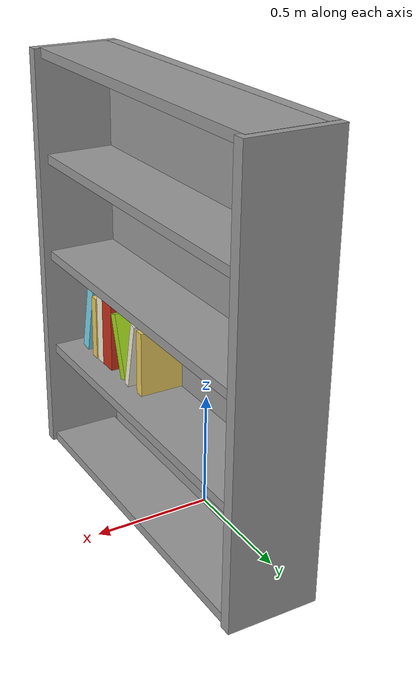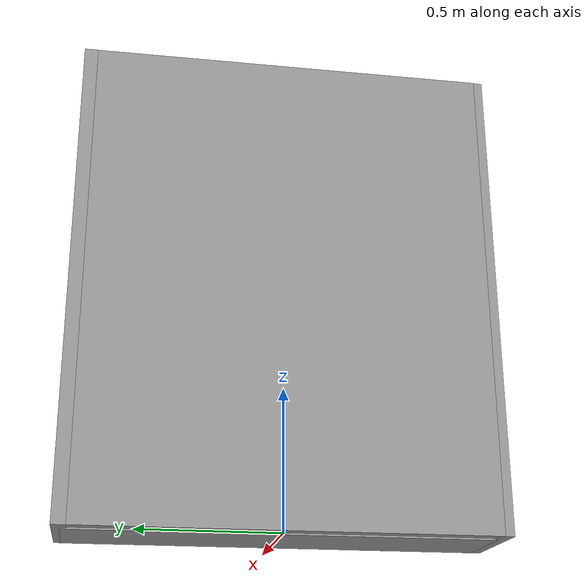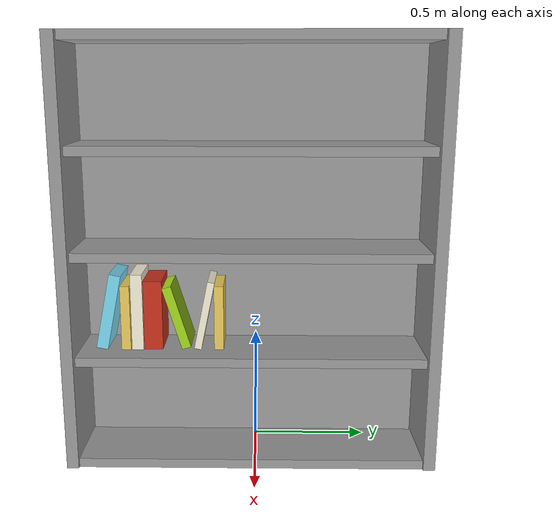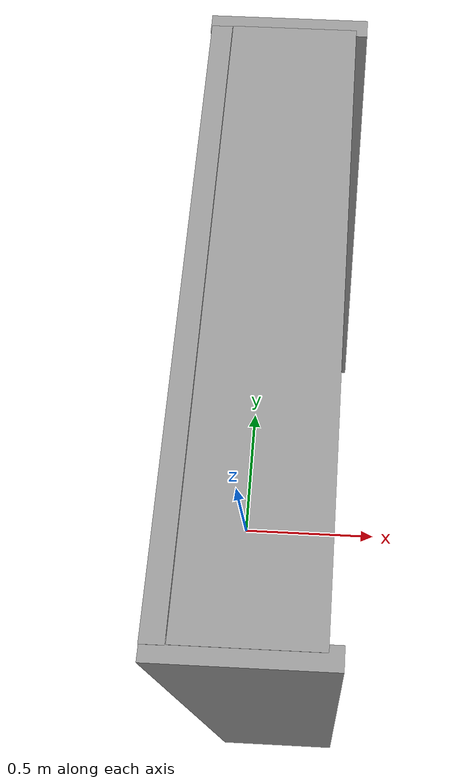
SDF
<?xml version='1.0'?>
<sdf version='1.7'>
  <model name='my_bookshelf'>
    <link name='link'>
      <inertial>
        <mass>1</mass>
        <inertia>
          <ixx>0.166667</ixx>
          <ixy>0</ixy>
          <ixz>0</ixz>
          <iyy>0.166667</iyy>
          <iyz>0</iyz>
          <izz>0.166667</izz>
        </inertia>
        <pose>0 0 0 0 -0 0</pose>
      </inertial>
      <self_collide>0</self_collide>
      <enable_wind>0</enable_wind>
      <kinematic>0</kinematic>
      <pose>0.010503 -0.018536 0.006993 0 -0 0</pose>
      <gravity>1</gravity>
      <visual name='visual'>
        <geometry>
          <box>
            <size>0.05 1.5 1.8</size>
          </box>
        </geometry>
        <material>
          <script>
            <name>Gazebo/Grey</name>
            <uri>file://media/materials/scripts/gazebo.material</uri>
          </script>
          <shader type='pixel'>
            <normal_map>__default__</normal_map>
          </shader>
          <ambient>0.9 0.9 0.9 1</ambient>
          <diffuse>0.9 0.9 0.9 1</diffuse>
          <specular>0.01 0.01 0.01 1</specular>
          <emissive>0 0 0 1</emissive>
        </material>
        <pose>0 0 0.9 0 -0 0</pose>
        <transparency>0</transparency>
        <cast_shadows>1</cast_shadows>
      </visual>
      <collision name='collision'>
        <laser_retro>0</laser_retro>
        <max_contacts>10</max_contacts>
        <pose>0 0 0.9 0 -0 0</pose>
        <geometry>
          <box>
            <size>0.05 1.5 1.8</size>
          </box>
        </geometry>
        <surface>
          <friction>
            <ode>
              <mu>1</mu>
              <mu2>1</mu2>
              <fdir1>0 0 0</fdir1>
              <slip1>0</slip1>
              <slip2>0</slip2>
            </ode>
            <torsional>
              <coefficient>1</coefficient>
              <patch_radius>0</patch_radius>
              <surface_radius>0</surface_radius>
              <use_patch_radius>1</use_patch_radius>
              <ode>
                <slip>0</slip>
              </ode>
            </torsional>
          </friction>
          <bounce>
            <restitution_coefficient>0</restitution_coefficient>
            <threshold>1e+06</threshold>
          </bounce>
          <contact>
            <collide_without_contact>0</collide_without_contact>
            <collide_without_contact_bitmask>1</collide_without_contact_bitmask>
            <collide_bitmask>1</collide_bitmask>
            <ode>
              <soft_cfm>0</soft_cfm>
              <soft_erp>0.2</soft_erp>
              <kp>1e+13</kp>
              <kd>1</kd>
              <max_vel>0.01</max_vel>
              <min_depth>0</min_depth>
            </ode>
            <bullet>
              <split_impulse>1</split_impulse>
              <split_impulse_penetration_threshold>-0.01</split_impulse_penetration_threshold>
              <soft_cfm>0</soft_cfm>
              <soft_erp>0.2</soft_erp>
              <kp>1e+13</kp>
              <kd>1</kd>
            </bullet>
          </contact>
        </surface>
      </collision>
    </link>
    <link name='link_0'>
      <inertial>
        <mass>1</mass>
        <inertia>
          <ixx>0.166667</ixx>
          <ixy>0</ixy>
          <ixz>0</ixz>
          <iyy>0.166667</iyy>
          <iyz>0</iyz>
          <izz>0.166667</izz>
        </inertia>
        <pose>0 0 0 0 -0 0</pose>
      </inertial>
      <pose>0.126439 -0.625111 0.659532 0 -0 0</pose>
      <gravity>0</gravity>
      <self_collide>0</self_collide>
      <kinematic>0</kinematic>
      <enable_wind>0</enable_wind>
      <visual name='visual'>
        <pose>0 0 0 -0.2 0 0</pose>
        <geometry>
          <box>
            <size>0.2 0.05 0.33</size>
          </box>
        </geometry>
        <material>
          <lighting>1</lighting>
          <script>
            <uri>file://media/materials/scripts/gazebo.material</uri>
            <name>Gazebo/Grey</name>
          </script>
          <shader type='pixel'>
            <normal_map>__default__</normal_map>
          </shader>
          <ambient>0.47 0.84 0.93 1</ambient>
          <diffuse>0.47 0.84 0.93 1</diffuse>
          <specular>0.01 0.01 0.01 1</specular>
          <emissive>0 0 0 1</emissive>
        </material>
        <transparency>0</transparency>
        <cast_shadows>1</cast_shadows>
      </visual>
      <collision name='collision'>
        <laser_retro>0</laser_retro>
        <max_contacts>10</max_contacts>
        <pose>0 0 0 -0.2 0 0</pose>
        <geometry>
          <box>
            <size>0.2 0.05 0.33</size>
          </box>
        </geometry>
        <surface>
          <friction>
            <ode>
              <mu>1</mu>
              <mu2>1</mu2>
              <fdir1>0 0 0</fdir1>
              <slip1>0</slip1>
              <slip2>0</slip2>
            </ode>
            <torsional>
              <coefficient>1</coefficient>
              <patch_radius>0</patch_radius>
              <surface_radius>0</surface_radius>
              <use_patch_radius>1</use_patch_radius>
              <ode>
                <slip>0</slip>
              </ode>
            </torsional>
          </friction>
          <bounce>
            <restitution_coefficient>0</restitution_coefficient>
            <threshold>1e+06</threshold>
          </bounce>
          <contact>
            <collide_without_contact>0</collide_without_contact>
            <collide_without_contact_bitmask>1</collide_without_contact_bitmask>
            <collide_bitmask>1</collide_bitmask>
            <ode>
              <soft_cfm>0</soft_cfm>
              <soft_erp>0.2</soft_erp>
              <kp>1e+13</kp>
              <kd>1</kd>
              <max_vel>0.01</max_vel>
              <min_depth>0</min_depth>
            </ode>
            <bullet>
              <split_impulse>1</split_impulse>
              <split_impulse_penetration_threshold>-0.01</split_impulse_penetration_threshold>
              <soft_cfm>0</soft_cfm>
              <soft_erp>0.2</soft_erp>
              <kp>1e+13</kp>
              <kd>1</kd>
            </bullet>
          </contact>
        </surface>
      </collision>
    </link>
    <link name='link_0_clone'>
      <inertial>
        <mass>1</mass>
        <inertia>
          <ixx>0.166667</ixx>
          <ixy>0</ixy>
          <ixz>0</ixz>
          <iyy>0.166667</iyy>
          <iyz>0</iyz>
          <izz>0.166667</izz>
        </inertia>
        <pose>0 0 0 0 -0 0</pose>
      </inertial>
      <pose>0.132674 -0.552591 0.635683 0 -0 0</pose>
      <gravity>1</gravity>
      <self_collide>0</self_collide>
      <kinematic>0</kinematic>
      <enable_wind>0</enable_wind>
      <visual name='visual'>
        <pose>0 0 0 0 -0 0</pose>
        <geometry>
          <box>
            <size>0.2 0.04 0.28</size>
          </box>
        </geometry>
        <material>
          <lighting>1</lighting>
          <script>
            <uri>file://media/materials/scripts/gazebo.material</uri>
            <name>Gazebo/Grey</name>
          </script>
          <shader type='pixel'>
            <normal_map>__default__</normal_map>
          </shader>
          <ambient>0.91 0.79 0.36 1</ambient>
          <diffuse>0.91 0.79 0.36 1</diffuse>
          <specular>0.01 0.01 0.01 1</specular>
          <emissive>0 0 0 1</emissive>
        </material>
        <transparency>0</transparency>
        <cast_shadows>1</cast_shadows>
      </visual>
      <collision name='collision'>
        <laser_retro>0</laser_retro>
        <max_contacts>10</max_contacts>
        <pose>0 0 0 0 -0 0</pose>
        <geometry>
          <box>
            <size>0.2 0.04 0.28</size>
          </box>
        </geometry>
        <surface>
          <friction>
            <ode>
              <mu>1</mu>
              <mu2>1</mu2>
              <fdir1>0 0 0</fdir1>
              <slip1>0</slip1>
              <slip2>0</slip2>
            </ode>
            <torsional>
              <coefficient>1</coefficient>
              <patch_radius>0</patch_radius>
              <surface_radius>0</surface_radius>
              <use_patch_radius>1</use_patch_radius>
              <ode>
                <slip>0</slip>
              </ode>
            </torsional>
          </friction>
          <bounce>
            <restitution_coefficient>0</restitution_coefficient>
            <threshold>1e+06</threshold>
          </bounce>
          <contact>
            <collide_without_contact>0</collide_without_contact>
            <collide_without_contact_bitmask>1</collide_without_contact_bitmask>
            <collide_bitmask>1</collide_bitmask>
            <ode>
              <soft_cfm>0</soft_cfm>
              <soft_erp>0.2</soft_erp>
              <kp>1e+13</kp>
              <kd>1</kd>
              <max_vel>0.01</max_vel>
              <min_depth>0</min_depth>
            </ode>
            <bullet>
              <split_impulse>1</split_impulse>
              <split_impulse_penetration_threshold>-0.01</split_impulse_penetration_threshold>
              <soft_cfm>0</soft_cfm>
              <soft_erp>0.2</soft_erp>
              <kp>1e+13</kp>
              <kd>1</kd>
            </bullet>
          </contact>
        </surface>
      </collision>
    </link>
    <link name='link_0_clone_0'>
      <inertial>
        <mass>1</mass>
        <inertia>
          <ixx>0.166667</ixx>
          <ixy>0</ixy>
          <ixz>0</ixz>
          <iyy>0.166667</iyy>
          <iyz>0</iyz>
          <izz>0.166667</izz>
        </inertia>
        <pose>0 0 0 0 -0 0</pose>
      </inertial>
      <pose>0.128809 -0.503591 0.659532 0 -0 0</pose>
      <gravity>1</gravity>
      <self_collide>0</self_collide>
      <kinematic>0</kinematic>
      <enable_wind>0</enable_wind>
      <visual name='visual'>
        <pose>0 0 0 0 -0 0</pose>
        <geometry>
          <box>
            <size>0.2 0.05 0.33</size>
          </box>
        </geometry>
        <material>
          <lighting>1</lighting>
          <script>
            <uri>file://media/materials/scripts/gazebo.material</uri>
            <name>Gazebo/Grey</name>
          </script>
          <shader type='pixel'>
            <normal_map>__default__</normal_map>
          </shader>
          <ambient>0.96 0.93 0.84 1</ambient>
          <diffuse>0.96 0.93 0.84 1</diffuse>
          <specular>0.01 0.01 0.01 1</specular>
          <emissive>0 0 0 1</emissive>
        </material>
        <transparency>0</transparency>
        <cast_shadows>1</cast_shadows>
      </visual>
      <collision name='collision'>
        <laser_retro>0</laser_retro>
        <max_contacts>10</max_contacts>
        <pose>0 0 0 0 -0 0</pose>
        <geometry>
          <box>
            <size>0.2 0.05 0.33</size>
          </box>
        </geometry>
        <surface>
          <friction>
            <ode>
              <mu>1</mu>
              <mu2>1</mu2>
              <fdir1>0 0 0</fdir1>
              <slip1>0</slip1>
              <slip2>0</slip2>
            </ode>
            <torsional>
              <coefficient>1</coefficient>
              <patch_radius>0</patch_radius>
              <surface_radius>0</surface_radius>
              <use_patch_radius>1</use_patch_radius>
              <ode>
                <slip>0</slip>
              </ode>
            </torsional>
          </friction>
          <bounce>
            <restitution_coefficient>0</restitution_coefficient>
            <threshold>1e+06</threshold>
          </bounce>
          <contact>
            <collide_without_contact>0</collide_without_contact>
            <collide_without_contact_bitmask>1</collide_without_contact_bitmask>
            <collide_bitmask>1</collide_bitmask>
            <ode>
              <soft_cfm>0</soft_cfm>
              <soft_erp>0.2</soft_erp>
              <kp>1e+13</kp>
              <kd>1</kd>
              <max_vel>0.01</max_vel>
              <min_depth>0</min_depth>
            </ode>
            <bullet>
              <split_impulse>1</split_impulse>
              <split_impulse_penetration_threshold>-0.01</split_impulse_penetration_threshold>
              <soft_cfm>0</soft_cfm>
              <soft_erp>0.2</soft_erp>
              <kp>1e+13</kp>
              <kd>1</kd>
            </bullet>
          </contact>
        </surface>
      </collision>
    </link>
    <link name='link_0_clone_0_clone'>
      <inertial>
        <mass>1</mass>
        <inertia>
          <ixx>0.166667</ixx>
          <ixy>0</ixy>
          <ixz>0</ixz>
          <iyy>0.166667</iyy>
          <iyz>0</iyz>
          <izz>0.166667</izz>
        </inertia>
        <pose>0 0 0 0 -0 0</pose>
      </inertial>
      <pose>0.130424 -0.435023 0.647115 0 -0 0</pose>
      <gravity>1</gravity>
      <self_collide>0</self_collide>
      <kinematic>0</kinematic>
      <enable_wind>0</enable_wind>
      <visual name='visual'>
        <pose>0 0 0 0 -0 0</pose>
        <geometry>
          <box>
            <size>0.2 0.08 0.3</size>
          </box>
        </geometry>
        <material>
          <lighting>1</lighting>
          <script>
            <uri>file://media/materials/scripts/gazebo.material</uri>
            <name>Gazebo/Grey</name>
          </script>
          <shader type='pixel'>
            <normal_map>__default__</normal_map>
          </shader>
          <ambient>0.78 0.19 0.11 1</ambient>
          <diffuse>0.78 0.19 0.11 1</diffuse>
          <specular>0.01 0.01 0.01 1</specular>
          <emissive>0 0 0 1</emissive>
        </material>
        <transparency>0</transparency>
        <cast_shadows>1</cast_shadows>
      </visual>
      <collision name='collision'>
        <laser_retro>0</laser_retro>
        <max_contacts>10</max_contacts>
        <pose>0 0 0 0 -0 0</pose>
        <geometry>
          <box>
            <size>0.2 0.08 0.3</size>
          </box>
        </geometry>
        <surface>
          <friction>
            <ode>
              <mu>1</mu>
              <mu2>1</mu2>
              <fdir1>0 0 0</fdir1>
              <slip1>0</slip1>
              <slip2>0</slip2>
            </ode>
            <torsional>
              <coefficient>1</coefficient>
              <patch_radius>0</patch_radius>
              <surface_radius>0</surface_radius>
              <use_patch_radius>1</use_patch_radius>
              <ode>
                <slip>0</slip>
              </ode>
            </torsional>
          </friction>
          <bounce>
            <restitution_coefficient>0</restitution_coefficient>
            <threshold>1e+06</threshold>
          </bounce>
          <contact>
            <collide_without_contact>0</collide_without_contact>
            <collide_without_contact_bitmask>1</collide_without_contact_bitmask>
            <collide_bitmask>1</collide_bitmask>
            <ode>
              <soft_cfm>0</soft_cfm>
              <soft_erp>0.2</soft_erp>
              <kp>1e+13</kp>
              <kd>1</kd>
              <max_vel>0.01</max_vel>
              <min_depth>0</min_depth>
            </ode>
            <bullet>
              <split_impulse>1</split_impulse>
              <split_impulse_penetration_threshold>-0.01</split_impulse_penetration_threshold>
              <soft_cfm>0</soft_cfm>
              <soft_erp>0.2</soft_erp>
              <kp>1e+13</kp>
              <kd>1</kd>
            </bullet>
          </contact>
        </surface>
      </collision>
    </link>
    <link name='link_0_clone_0_clone_0'>
      <inertial>
        <mass>1</mass>
        <inertia>
          <ixx>0.166667</ixx>
          <ixy>0</ixy>
          <ixz>0</ixz>
          <iyy>0.166667</iyy>
          <iyz>0</iyz>
          <izz>0.166667</izz>
        </inertia>
        <pose>0 0 0 0 -0 0</pose>
      </inertial>
      <pose>0.13743 -0.21618 0.64809 0 -0 0</pose>
      <gravity>0</gravity>
      <self_collide>0</self_collide>
      <kinematic>0</kinematic>
      <enable_wind>0</enable_wind>
      <visual name='visual'>
        <pose>0 0 0 -0.2 0 0</pose>
        <geometry>
          <box>
            <size>0.2 0.03 0.3</size>
          </box>
        </geometry>
        <material>
          <lighting>1</lighting>
          <script>
            <uri>file://media/materials/scripts/gazebo.material</uri>
            <name>Gazebo/Grey</name>
          </script>
          <shader type='pixel'>
            <normal_map>__default__</normal_map>
          </shader>
          <ambient>0.96 0.93 0.84 1</ambient>
          <diffuse>0.96 0.93 0.84 1</diffuse>
          <specular>0.01 0.01 0.01 1</specular>
          <emissive>0 0 0 1</emissive>
        </material>
        <transparency>0</transparency>
        <cast_shadows>1</cast_shadows>
      </visual>
      <collision name='collision'>
        <laser_retro>0</laser_retro>
        <max_contacts>10</max_contacts>
        <pose>0 0 0 -0.2 0 0</pose>
        <geometry>
          <box>
            <size>0.2 0.03 0.3</size>
          </box>
        </geometry>
        <surface>
          <friction>
            <ode>
              <mu>1</mu>
              <mu2>1</mu2>
              <fdir1>0 0 0</fdir1>
              <slip1>0</slip1>
              <slip2>0</slip2>
            </ode>
            <torsional>
              <coefficient>1</coefficient>
              <patch_radius>0</patch_radius>
              <surface_radius>0</surface_radius>
              <use_patch_radius>1</use_patch_radius>
              <ode>
                <slip>0</slip>
              </ode>
            </torsional>
          </friction>
          <bounce>
            <restitution_coefficient>0</restitution_coefficient>
            <threshold>1e+06</threshold>
          </bounce>
          <contact>
            <collide_without_contact>0</collide_without_contact>
            <collide_without_contact_bitmask>1</collide_without_contact_bitmask>
            <collide_bitmask>1</collide_bitmask>
            <ode>
              <soft_cfm>0</soft_cfm>
              <soft_erp>0.2</soft_erp>
              <kp>1e+13</kp>
              <kd>1</kd>
              <max_vel>0.01</max_vel>
              <min_depth>0</min_depth>
            </ode>
            <bullet>
              <split_impulse>1</split_impulse>
              <split_impulse_penetration_threshold>-0.01</split_impulse_penetration_threshold>
              <soft_cfm>0</soft_cfm>
              <soft_erp>0.2</soft_erp>
              <kp>1e+13</kp>
              <kd>1</kd>
            </bullet>
          </contact>
        </surface>
      </collision>
    </link>
    <link name='link_0_clone_clone'>
      <inertial>
        <mass>1</mass>
        <inertia>
          <ixx>0.166667</ixx>
          <ixy>0</ixy>
          <ixz>0</ixz>
          <iyy>0.166667</iyy>
          <iyz>0</iyz>
          <izz>0.166667</izz>
        </inertia>
        <pose>0 0 0 0 -0 0</pose>
      </inertial>
      <pose>0.129091 -0.335574 0.635683 0 -0 0</pose>
      <gravity>1</gravity>
      <self_collide>0</self_collide>
      <kinematic>0</kinematic>
      <enable_wind>0</enable_wind>
      <visual name='visual'>
        <pose>0 0 0 0.3 -0 0</pose>
        <geometry>
          <box>
            <size>0.2 0.04 0.28</size>
          </box>
        </geometry>
        <material>
          <lighting>1</lighting>
          <script>
            <uri>file://media/materials/scripts/gazebo.material</uri>
            <name>Gazebo/Grey</name>
          </script>
          <shader type='pixel'>
            <normal_map>__default__</normal_map>
          </shader>
          <ambient>0.63 0.84 0.11 1</ambient>
          <diffuse>0.63 0.84 0.11 1</diffuse>
          <specular>0.01 0.01 0.01 1</specular>
          <emissive>0 0 0 1</emissive>
        </material>
        <transparency>0</transparency>
        <cast_shadows>1</cast_shadows>
      </visual>
      <collision name='collision'>
        <laser_retro>0</laser_retro>
        <max_contacts>10</max_contacts>
        <pose>0 0 0 0.3 -0 0</pose>
        <geometry>
          <box>
            <size>0.2 0.04 0.28</size>
          </box>
        </geometry>
        <surface>
          <friction>
            <ode>
              <mu>1</mu>
              <mu2>1</mu2>
              <fdir1>0 0 0</fdir1>
              <slip1>0</slip1>
              <slip2>0</slip2>
            </ode>
            <torsional>
              <coefficient>1</coefficient>
              <patch_radius>0</patch_radius>
              <surface_radius>0</surface_radius>
              <use_patch_radius>1</use_patch_radius>
              <ode>
                <slip>0</slip>
              </ode>
            </torsional>
          </friction>
          <bounce>
            <restitution_coefficient>0</restitution_coefficient>
            <threshold>1e+06</threshold>
          </bounce>
          <contact>
            <collide_without_contact>0</collide_without_contact>
            <collide_without_contact_bitmask>1</collide_without_contact_bitmask>
            <collide_bitmask>1</collide_bitmask>
            <ode>
              <soft_cfm>0</soft_cfm>
              <soft_erp>0.2</soft_erp>
              <kp>1e+13</kp>
              <kd>1</kd>
              <max_vel>0.01</max_vel>
              <min_depth>0</min_depth>
            </ode>
            <bullet>
              <split_impulse>1</split_impulse>
              <split_impulse_penetration_threshold>-0.01</split_impulse_penetration_threshold>
              <soft_cfm>0</soft_cfm>
              <soft_erp>0.2</soft_erp>
              <kp>1e+13</kp>
              <kd>1</kd>
            </bullet>
          </contact>
        </surface>
      </collision>
    </link>
    <link name='link_0_clone_clone_0'>
      <inertial>
        <mass>1</mass>
        <inertia>
          <ixx>0.166667</ixx>
          <ixy>0</ixy>
          <ixz>0</ixz>
          <iyy>0.166667</iyy>
          <iyz>0</iyz>
          <izz>0.166667</izz>
        </inertia>
        <pose>0 0 0 0 -0 0</pose>
      </inertial>
      <pose>0.125867 -0.155367 0.635683 0 -0 0</pose>
      <gravity>1</gravity>
      <self_collide>0</self_collide>
      <kinematic>0</kinematic>
      <enable_wind>0</enable_wind>
      <visual name='visual'>
        <pose>0 0 0 0 -0 0</pose>
        <geometry>
          <box>
            <size>0.2 0.04 0.28</size>
          </box>
        </geometry>
        <material>
          <lighting>1</lighting>
          <script>
            <uri>file://media/materials/scripts/gazebo.material</uri>
            <name>Gazebo/Grey</name>
          </script>
          <shader type='pixel'>
            <normal_map>__default__</normal_map>
          </shader>
          <ambient>0.91 0.79 0.36 1</ambient>
          <diffuse>0.91 0.79 0.36 1</diffuse>
          <specular>0.01 0.01 0.01 1</specular>
          <emissive>0 0 0 1</emissive>
        </material>
        <transparency>0</transparency>
        <cast_shadows>1</cast_shadows>
      </visual>
      <collision name='collision'>
        <laser_retro>0</laser_retro>
        <max_contacts>10</max_contacts>
        <pose>0 0 0 0 -0 0</pose>
        <geometry>
          <box>
            <size>0.2 0.04 0.28</size>
          </box>
        </geometry>
        <surface>
          <friction>
            <ode>
              <mu>1</mu>
              <mu2>1</mu2>
              <fdir1>0 0 0</fdir1>
              <slip1>0</slip1>
              <slip2>0</slip2>
            </ode>
            <torsional>
              <coefficient>1</coefficient>
              <patch_radius>0</patch_radius>
              <surface_radius>0</surface_radius>
              <use_patch_radius>1</use_patch_radius>
              <ode>
                <slip>0</slip>
              </ode>
            </torsional>
          </friction>
          <bounce>
            <restitution_coefficient>0</restitution_coefficient>
            <threshold>1e+06</threshold>
          </bounce>
          <contact>
            <collide_without_contact>0</collide_without_contact>
            <collide_without_contact_bitmask>1</collide_without_contact_bitmask>
            <collide_bitmask>1</collide_bitmask>
            <ode>
              <soft_cfm>0</soft_cfm>
              <soft_erp>0.2</soft_erp>
              <kp>1e+13</kp>
              <kd>1</kd>
              <max_vel>0.01</max_vel>
              <min_depth>0</min_depth>
            </ode>
            <bullet>
              <split_impulse>1</split_impulse>
              <split_impulse_penetration_threshold>-0.01</split_impulse_penetration_threshold>
              <soft_cfm>0</soft_cfm>
              <soft_erp>0.2</soft_erp>
              <kp>1e+13</kp>
              <kd>1</kd>
            </bullet>
          </contact>
        </surface>
      </collision>
    </link>
    <link name='link_clone'>
      <inertial>
        <mass>1</mass>
        <inertia>
          <ixx>0.166667</ixx>
          <ixy>0</ixy>
          <ixz>0</ixz>
          <iyy>0.166667</iyy>
          <iyz>0</iyz>
          <izz>0.166667</izz>
        </inertia>
        <pose>0 0 0 0 -0 0</pose>
      </inertial>
      <self_collide>0</self_collide>
      <enable_wind>0</enable_wind>
      <kinematic>0</kinematic>
      <pose>0.199559 -0.011174 -1.077 1.1e-05 -0.001065 2e-06</pose>
      <gravity>1</gravity>
      <visual name='visual'>
        <geometry>
          <box>
            <size>0.3 1.5 0.04</size>
          </box>
        </geometry>
        <material>
          <script>
            <name>Gazebo/Grey</name>
            <uri>file://media/materials/scripts/gazebo.material</uri>
          </script>
          <shader type='pixel'>
            <normal_map>__default__</normal_map>
          </shader>
          <ambient>0.9 0.9 0.9 1</ambient>
          <diffuse>0.9 0.9 0.9 1</diffuse>
          <specular>0.01 0.01 0.01 1</specular>
          <emissive>0 0 0 1</emissive>
        </material>
        <pose>0 0 1.1 0 -0 0</pose>
        <transparency>0</transparency>
        <cast_shadows>1</cast_shadows>
      </visual>
      <collision name='collision'>
        <laser_retro>0</laser_retro>
        <max_contacts>10</max_contacts>
        <pose>0 0 1.1 0 -0 0</pose>
        <geometry>
          <box>
            <size>0.3 1.5 0.04</size>
          </box>
        </geometry>
        <surface>
          <friction>
            <ode>
              <mu>1</mu>
              <mu2>1</mu2>
              <fdir1>0 0 0</fdir1>
              <slip1>0</slip1>
              <slip2>0</slip2>
            </ode>
            <torsional>
              <coefficient>1</coefficient>
              <patch_radius>0</patch_radius>
              <surface_radius>0</surface_radius>
              <use_patch_radius>1</use_patch_radius>
              <ode>
                <slip>0</slip>
              </ode>
            </torsional>
          </friction>
          <bounce>
            <restitution_coefficient>0</restitution_coefficient>
            <threshold>1e+06</threshold>
          </bounce>
          <contact>
            <collide_without_contact>0</collide_without_contact>
            <collide_without_contact_bitmask>1</collide_without_contact_bitmask>
            <collide_bitmask>1</collide_bitmask>
            <ode>
              <soft_cfm>0</soft_cfm>
              <soft_erp>0.2</soft_erp>
              <kp>1e+13</kp>
              <kd>1</kd>
              <max_vel>0.01</max_vel>
              <min_depth>0</min_depth>
            </ode>
            <bullet>
              <split_impulse>1</split_impulse>
              <split_impulse_penetration_threshold>-0.01</split_impulse_penetration_threshold>
              <soft_cfm>0</soft_cfm>
              <soft_erp>0.2</soft_erp>
              <kp>1e+13</kp>
              <kd>1</kd>
            </bullet>
          </contact>
        </surface>
      </collision>
    </link>
    <link name='link_clone_0'>
      <inertial>
        <mass>1</mass>
        <inertia>
          <ixx>0.166667</ixx>
          <ixy>0</ixy>
          <ixz>0</ixz>
          <iyy>0.166667</iyy>
          <iyz>0</iyz>
          <izz>0.166667</izz>
        </inertia>
        <pose>0 0 0 0 -0 0</pose>
      </inertial>
      <self_collide>0</self_collide>
      <enable_wind>0</enable_wind>
      <kinematic>0</kinematic>
      <pose>0.1762 -0.777121 0.006003 0 -0 0</pose>
      <gravity>1</gravity>
      <visual name='visual'>
        <geometry>
          <box>
            <size>0.05 0.38 1.8</size>
          </box>
        </geometry>
        <material>
          <script>
            <name>Gazebo/Grey</name>
            <uri>file://media/materials/scripts/gazebo.material</uri>
          </script>
          <shader type='pixel'>
            <normal_map>__default__</normal_map>
          </shader>
          <ambient>0.9 0.9 0.9 1</ambient>
          <diffuse>0.9 0.9 0.9 1</diffuse>
          <specular>0.01 0.01 0.01 1</specular>
          <emissive>0 0 0 1</emissive>
        </material>
        <pose>0 0 0.9 0 -0 1.5707</pose>
        <transparency>0</transparency>
        <cast_shadows>1</cast_shadows>
      </visual>
      <collision name='collision'>
        <laser_retro>0</laser_retro>
        <max_contacts>10</max_contacts>
        <pose>0 0 0.9 0 -0 1.5707</pose>
        <geometry>
          <box>
            <size>0.05 0.38 1.8</size>
          </box>
        </geometry>
        <surface>
          <friction>
            <ode>
              <mu>1</mu>
              <mu2>1</mu2>
              <fdir1>0 0 0</fdir1>
              <slip1>0</slip1>
              <slip2>0</slip2>
            </ode>
            <torsional>
              <coefficient>1</coefficient>
              <patch_radius>0</patch_radius>
              <surface_radius>0</surface_radius>
              <use_patch_radius>1</use_patch_radius>
              <ode>
                <slip>0</slip>
              </ode>
            </torsional>
          </friction>
          <bounce>
            <restitution_coefficient>0</restitution_coefficient>
            <threshold>1e+06</threshold>
          </bounce>
          <contact>
            <collide_without_contact>0</collide_without_contact>
            <collide_without_contact_bitmask>1</collide_without_contact_bitmask>
            <collide_bitmask>1</collide_bitmask>
            <ode>
              <soft_cfm>0</soft_cfm>
              <soft_erp>0.2</soft_erp>
              <kp>1e+13</kp>
              <kd>1</kd>
              <max_vel>0.01</max_vel>
              <min_depth>0</min_depth>
            </ode>
            <bullet>
              <split_impulse>1</split_impulse>
              <split_impulse_penetration_threshold>-0.01</split_impulse_penetration_threshold>
              <soft_cfm>0</soft_cfm>
              <soft_erp>0.2</soft_erp>
              <kp>1e+13</kp>
              <kd>1</kd>
            </bullet>
          </contact>
        </surface>
      </collision>
    </link>
    <link name='link_clone_0_clone'>
      <inertial>
        <mass>1</mass>
        <inertia>
          <ixx>0.166667</ixx>
          <ixy>0</ixy>
          <ixz>0</ixz>
          <iyy>0.166667</iyy>
          <iyz>0</iyz>
          <izz>0.166667</izz>
        </inertia>
        <pose>0 0 0 0 -0 0</pose>
      </inertial>
      <self_collide>0</self_collide>
      <enable_wind>0</enable_wind>
      <kinematic>0</kinematic>
      <pose>0.173251 0.740189 0.006003 0 -0 0</pose>
      <gravity>1</gravity>
      <visual name='visual'>
        <geometry>
          <box>
            <size>0.05 0.38 1.8</size>
          </box>
        </geometry>
        <material>
          <script>
            <name>Gazebo/Grey</name>
            <uri>file://media/materials/scripts/gazebo.material</uri>
          </script>
          <shader type='pixel'>
            <normal_map>__default__</normal_map>
          </shader>
          <ambient>0.9 0.9 0.9 1</ambient>
          <diffuse>0.9 0.9 0.9 1</diffuse>
          <specular>0.01 0.01 0.01 1</specular>
          <emissive>0 0 0 1</emissive>
        </material>
        <pose>0 0 0.9 0 -0 1.5707</pose>
        <transparency>0</transparency>
        <cast_shadows>1</cast_shadows>
      </visual>
      <collision name='collision'>
        <laser_retro>0</laser_retro>
        <max_contacts>10</max_contacts>
        <pose>0 0 0.9 0 -0 1.5707</pose>
        <geometry>
          <box>
            <size>0.05 0.38 1.8</size>
          </box>
        </geometry>
        <surface>
          <friction>
            <ode>
              <mu>1</mu>
              <mu2>1</mu2>
              <fdir1>0 0 0</fdir1>
              <slip1>0</slip1>
              <slip2>0</slip2>
            </ode>
            <torsional>
              <coefficient>1</coefficient>
              <patch_radius>0</patch_radius>
              <surface_radius>0</surface_radius>
              <use_patch_radius>1</use_patch_radius>
              <ode>
                <slip>0</slip>
              </ode>
            </torsional>
          </friction>
          <bounce>
            <restitution_coefficient>0</restitution_coefficient>
            <threshold>1e+06</threshold>
          </bounce>
          <contact>
            <collide_without_contact>0</collide_without_contact>
            <collide_without_contact_bitmask>1</collide_without_contact_bitmask>
            <collide_bitmask>1</collide_bitmask>
            <ode>
              <soft_cfm>0</soft_cfm>
              <soft_erp>0.2</soft_erp>
              <kp>1e+13</kp>
              <kd>1</kd>
              <max_vel>0.01</max_vel>
              <min_depth>0</min_depth>
            </ode>
            <bullet>
              <split_impulse>1</split_impulse>
              <split_impulse_penetration_threshold>-0.01</split_impulse_penetration_threshold>
              <soft_cfm>0</soft_cfm>
              <soft_erp>0.2</soft_erp>
              <kp>1e+13</kp>
              <kd>1</kd>
            </bullet>
          </contact>
        </surface>
      </collision>
    </link>
    <link name='link_clone_clone'>
      <inertial>
        <mass>1</mass>
        <inertia>
          <ixx>0.166667</ixx>
          <ixy>0</ixy>
          <ixz>0</ixz>
          <iyy>0.166667</iyy>
          <iyz>0</iyz>
          <izz>0.166667</izz>
        </inertia>
        <pose>0 0 0 0 -0 0</pose>
      </inertial>
      <self_collide>0</self_collide>
      <enable_wind>0</enable_wind>
      <kinematic>0</kinematic>
      <pose>0.17729 -0.012222 0.249312 2.2e-05 0.000604 0.000114</pose>
      <gravity>1</gravity>
      <visual name='visual'>
        <geometry>
          <box>
            <size>0.3 1.5 0.04</size>
          </box>
        </geometry>
        <material>
          <script>
            <name>Gazebo/Grey</name>
            <uri>file://media/materials/scripts/gazebo.material</uri>
          </script>
          <shader type='pixel'>
            <normal_map>__default__</normal_map>
          </shader>
          <ambient>0.9 0.9 0.9 1</ambient>
          <diffuse>0.9 0.9 0.9 1</diffuse>
          <specular>0.01 0.01 0.01 1</specular>
          <emissive>0 0 0 1</emissive>
        </material>
        <pose>0 0 1.1 0 -0 0</pose>
        <transparency>0</transparency>
        <cast_shadows>1</cast_shadows>
      </visual>
      <collision name='collision'>
        <laser_retro>0</laser_retro>
        <max_contacts>10</max_contacts>
        <pose>0 0 1.1 0 -0 0</pose>
        <geometry>
          <box>
            <size>0.3 1.5 0.04</size>
          </box>
        </geometry>
        <surface>
          <friction>
            <ode>
              <mu>1</mu>
              <mu2>1</mu2>
              <fdir1>0 0 0</fdir1>
              <slip1>0</slip1>
              <slip2>0</slip2>
            </ode>
            <torsional>
              <coefficient>1</coefficient>
              <patch_radius>0</patch_radius>
              <surface_radius>0</surface_radius>
              <use_patch_radius>1</use_patch_radius>
              <ode>
                <slip>0</slip>
              </ode>
            </torsional>
          </friction>
          <bounce>
            <restitution_coefficient>0</restitution_coefficient>
            <threshold>1e+06</threshold>
          </bounce>
          <contact>
            <collide_without_contact>0</collide_without_contact>
            <collide_without_contact_bitmask>1</collide_without_contact_bitmask>
            <collide_bitmask>1</collide_bitmask>
            <ode>
              <soft_cfm>0</soft_cfm>
              <soft_erp>0.2</soft_erp>
              <kp>1e+13</kp>
              <kd>1</kd>
              <max_vel>0.01</max_vel>
              <min_depth>0</min_depth>
            </ode>
            <bullet>
              <split_impulse>1</split_impulse>
              <split_impulse_penetration_threshold>-0.01</split_impulse_penetration_threshold>
              <soft_cfm>0</soft_cfm>
              <soft_erp>0.2</soft_erp>
              <kp>1e+13</kp>
              <kd>1</kd>
            </bullet>
          </contact>
        </surface>
      </collision>
    </link>
    <link name='link_clone_clone_0'>
      <inertial>
        <mass>1</mass>
        <inertia>
          <ixx>0.166667</ixx>
          <ixy>0</ixy>
          <ixz>0</ixz>
          <iyy>0.166667</iyy>
          <iyz>0</iyz>
          <izz>0.166667</izz>
        </inertia>
        <pose>0 0 0 0 -0 0</pose>
      </inertial>
      <self_collide>0</self_collide>
      <enable_wind>0</enable_wind>
      <kinematic>0</kinematic>
      <pose>0.186363 -0.017339 0.93719 2.2e-05 0.000604 0.000114</pose>
      <gravity>0</gravity>
      <visual name='visual'>
        <geometry>
          <box>
            <size>0.3 1.5 0.04</size>
          </box>
        </geometry>
        <material>
          <script>
            <name>Gazebo/Grey</name>
            <uri>file://media/materials/scripts/gazebo.material</uri>
          </script>
          <shader type='pixel'>
            <normal_map>__default__</normal_map>
          </shader>
          <ambient>0.9 0.9 0.9 1</ambient>
          <diffuse>0.9 0.9 0.9 1</diffuse>
          <specular>0.01 0.01 0.01 1</specular>
          <emissive>0 0 0 1</emissive>
        </material>
        <pose>0 0 0.85 0 -0 0</pose>
        <transparency>0</transparency>
        <cast_shadows>1</cast_shadows>
      </visual>
      <collision name='collision'>
        <laser_retro>0</laser_retro>
        <max_contacts>10</max_contacts>
        <pose>0 0 0.85 0 -0 0</pose>
        <geometry>
          <box>
            <size>0.3 1.5 0.04</size>
          </box>
        </geometry>
        <surface>
          <friction>
            <ode>
              <mu>1</mu>
              <mu2>1</mu2>
              <fdir1>0 0 0</fdir1>
              <slip1>0</slip1>
              <slip2>0</slip2>
            </ode>
            <torsional>
              <coefficient>1</coefficient>
              <patch_radius>0</patch_radius>
              <surface_radius>0</surface_radius>
              <use_patch_radius>1</use_patch_radius>
              <ode>
                <slip>0</slip>
              </ode>
            </torsional>
          </friction>
          <bounce>
            <restitution_coefficient>0</restitution_coefficient>
            <threshold>1e+06</threshold>
          </bounce>
          <contact>
            <collide_without_contact>0</collide_without_contact>
            <collide_without_contact_bitmask>1</collide_without_contact_bitmask>
            <collide_bitmask>1</collide_bitmask>
            <ode>
              <soft_cfm>0</soft_cfm>
              <soft_erp>0.2</soft_erp>
              <kp>1e+13</kp>
              <kd>1</kd>
              <max_vel>0.01</max_vel>
              <min_depth>0</min_depth>
            </ode>
            <bullet>
              <split_impulse>1</split_impulse>
              <split_impulse_penetration_threshold>-0.01</split_impulse_penetration_threshold>
              <soft_cfm>0</soft_cfm>
              <soft_erp>0.2</soft_erp>
              <kp>1e+13</kp>
              <kd>1</kd>
            </bullet>
          </contact>
        </surface>
      </collision>
    </link>
    <link name='link_clone_clone_1'>
      <inertial>
        <mass>1</mass>
        <inertia>
          <ixx>0.166667</ixx>
          <ixy>0</ixy>
          <ixz>0</ixz>
          <iyy>0.166667</iyy>
          <iyz>0</iyz>
          <izz>0.166667</izz>
        </inertia>
        <pose>0 0 0 0 -0 0</pose>
      </inertial>
      <self_collide>0</self_collide>
      <enable_wind>0</enable_wind>
      <kinematic>0</kinematic>
      <pose>0.18345 -0.015542 0.072067 2.2e-05 0.000604 0.000114</pose>
      <gravity>1</gravity>
      <visual name='visual'>
        <geometry>
          <box>
            <size>0.3 1.5 0.04</size>
          </box>
        </geometry>
        <material>
          <script>
            <name>Gazebo/Grey</name>
            <uri>file://media/materials/scripts/gazebo.material</uri>
          </script>
          <shader type='pixel'>
            <normal_map>__default__</normal_map>
          </shader>
          <ambient>0.9 0.9 0.9 1</ambient>
          <diffuse>0.9 0.9 0.9 1</diffuse>
          <specular>0.01 0.01 0.01 1</specular>
          <emissive>0 0 0 1</emissive>
        </material>
        <pose>0 0 0.85 0 -0 0</pose>
        <transparency>0</transparency>
        <cast_shadows>1</cast_shadows>
      </visual>
      <collision name='collision'>
        <laser_retro>0</laser_retro>
        <max_contacts>10</max_contacts>
        <pose>0 0 0.85 0 -0 0</pose>
        <geometry>
          <box>
            <size>0.3 1.5 0.04</size>
          </box>
        </geometry>
        <surface>
          <friction>
            <ode>
              <mu>1</mu>
              <mu2>1</mu2>
              <fdir1>0 0 0</fdir1>
              <slip1>0</slip1>
              <slip2>0</slip2>
            </ode>
            <torsional>
              <coefficient>1</coefficient>
              <patch_radius>0</patch_radius>
              <surface_radius>0</surface_radius>
              <use_patch_radius>1</use_patch_radius>
              <ode>
                <slip>0</slip>
              </ode>
            </torsional>
          </friction>
          <bounce>
            <restitution_coefficient>0</restitution_coefficient>
            <threshold>1e+06</threshold>
          </bounce>
          <contact>
            <collide_without_contact>0</collide_without_contact>
            <collide_without_contact_bitmask>1</collide_without_contact_bitmask>
            <collide_bitmask>1</collide_bitmask>
            <ode>
              <soft_cfm>0</soft_cfm>
              <soft_erp>0.2</soft_erp>
              <kp>1e+13</kp>
              <kd>1</kd>
              <max_vel>0.01</max_vel>
              <min_depth>0</min_depth>
            </ode>
            <bullet>
              <split_impulse>1</split_impulse>
              <split_impulse_penetration_threshold>-0.01</split_impulse_penetration_threshold>
              <soft_cfm>0</soft_cfm>
              <soft_erp>0.2</soft_erp>
              <kp>1e+13</kp>
              <kd>1</kd>
            </bullet>
          </contact>
        </surface>
      </collision>
    </link>
    <link name='link_clone_clone_1_clone'>
      <inertial>
        <mass>1</mass>
        <inertia>
          <ixx>0.166667</ixx>
          <ixy>0</ixy>
          <ixz>0</ixz>
          <iyy>0.166667</iyy>
          <iyz>0</iyz>
          <izz>0.166667</izz>
        </inertia>
        <pose>0 0 0 0 -0 0</pose>
      </inertial>
      <self_collide>0</self_collide>
      <enable_wind>0</enable_wind>
      <kinematic>0</kinematic>
      <pose>0.179903 -0.012618 -0.37588 3.4e-05 0.002273 0.000226</pose>
      <gravity>0</gravity>
      <visual name='visual'>
        <geometry>
          <box>
            <size>0.3 1.5 0.04</size>
          </box>
        </geometry>
        <material>
          <script>
            <name>Gazebo/Grey</name>
            <uri>file://media/materials/scripts/gazebo.material</uri>
          </script>
          <shader type='pixel'>
            <normal_map>__default__</normal_map>
          </shader>
          <ambient>0.9 0.9 0.9 1</ambient>
          <diffuse>0.9 0.9 0.9 1</diffuse>
          <specular>0.01 0.01 0.01 1</specular>
          <emissive>0 0 0 1</emissive>
        </material>
        <pose>0 0 0.85 0 -0 0</pose>
        <transparency>0</transparency>
        <cast_shadows>1</cast_shadows>
      </visual>
      <collision name='collision'>
        <laser_retro>0</laser_retro>
        <max_contacts>10</max_contacts>
        <pose>0 0 0.85 0 -0 0</pose>
        <geometry>
          <box>
            <size>0.3 1.5 0.04</size>
          </box>
        </geometry>
        <surface>
          <friction>
            <ode>
              <mu>1</mu>
              <mu2>1</mu2>
              <fdir1>0 0 0</fdir1>
              <slip1>0</slip1>
              <slip2>0</slip2>
            </ode>
            <torsional>
              <coefficient>1</coefficient>
              <patch_radius>0</patch_radius>
              <surface_radius>0</surface_radius>
              <use_patch_radius>1</use_patch_radius>
              <ode>
                <slip>0</slip>
              </ode>
            </torsional>
          </friction>
          <bounce>
            <restitution_coefficient>0</restitution_coefficient>
            <threshold>1e+06</threshold>
          </bounce>
          <contact>
            <collide_without_contact>0</collide_without_contact>
            <collide_without_contact_bitmask>1</collide_without_contact_bitmask>
            <collide_bitmask>1</collide_bitmask>
            <ode>
              <soft_cfm>0</soft_cfm>
              <soft_erp>0.2</soft_erp>
              <kp>1e+13</kp>
              <kd>1</kd>
              <max_vel>0.01</max_vel>
              <min_depth>0</min_depth>
            </ode>
            <bullet>
              <split_impulse>1</split_impulse>
              <split_impulse_penetration_threshold>-0.01</split_impulse_penetration_threshold>
              <soft_cfm>0</soft_cfm>
              <soft_erp>0.2</soft_erp>
              <kp>1e+13</kp>
              <kd>1</kd>
            </bullet>
          </contact>
        </surface>
      </collision>
    </link>
    <static>1</static>
    <allow_auto_disable>1</allow_auto_disable>
  </model>
</sdf>
